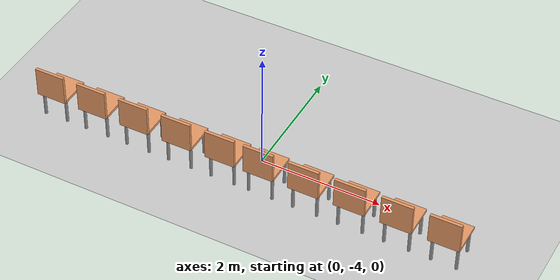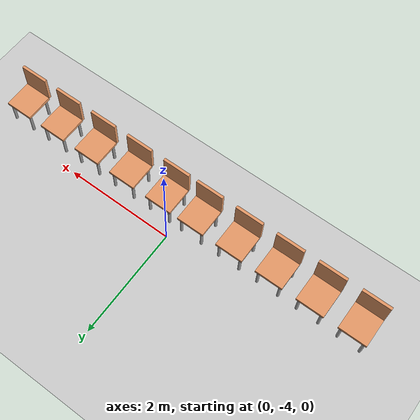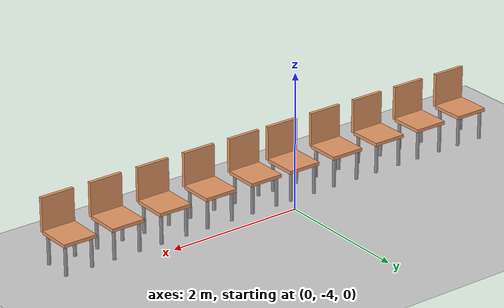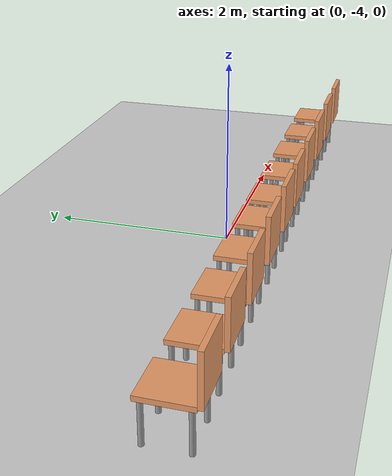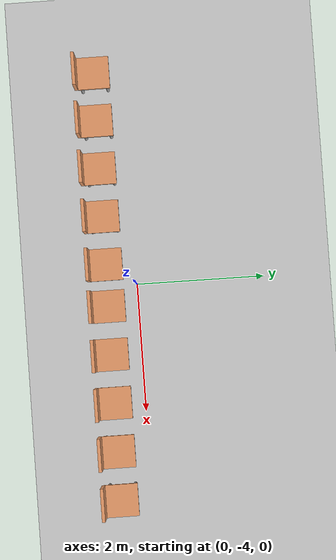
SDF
<sdf version="1.7">
 <world name="default">
  <model name="ground_plane">
   <static>1</static>
   <link name="link">
    <collision name="collision">
     <geometry><plane><normal>0 0 1</normal><size>100 100</size></plane></geometry>
     <surface>
      <contact><collide_bitmask>65535</collide_bitmask></contact>
      <friction><ode><mu>100</mu><mu2>50</mu2></ode></friction>
     </surface>
    </collision>
    <visual name="visual">
     <cast_shadows>0</cast_shadows>
     <geometry><plane><normal>0 0 1</normal><size>100 100</size></plane></geometry>
     <material>
      <script><uri>file://media/materials/scripts/gazebo.material</uri><name>Gazebo/Grey</name></script>
     </material>
    </visual>
   </link>
  </model>
  <model name="chairs_10">
   <model name="chair_1">
    <static>1</static>
    <link name="chair_base">
     <visual name="seat_visual">
      <geometry><box><size>0.5 0.5 0.05</size></box></geometry>
      <pose>0 0 0.45 0 -0 0</pose>
      <material><ambient>0.8 0.5 0.3 1</ambient><diffuse>0.9 0.6 0.4 1</diffuse></material>
     </visual>
     <collision name="seat_collision">
      <geometry><box><size>0.5 0.5 0.05</size></box></geometry>
      <pose>0 0 0.45 0 -0 0</pose>
     </collision>
     <visual name="backrest_visual">
      <geometry><box><size>0.5 0.05 0.5</size></box></geometry>
      <pose>0 -0.275 0.7 0 -0 0</pose>
      <material><ambient>0.8 0.5 0.3 1</ambient><diffuse>0.9 0.6 0.4 1</diffuse></material>
     </visual>
     <collision name="backrest_collision">
      <geometry><box><size>0.5 0.05 0.5</size></box></geometry>
      <pose>0 -0.275 0.7 0 -0 0</pose>
     </collision>
     <visual name="leg1_visual">
      <geometry><cylinder><radius>0.025</radius><length>0.45</length></cylinder></geometry>
      <pose>0.2 0.2 0.225 0 -0 0</pose>
      <material><ambient>0.5 0.5 0.5 1</ambient><diffuse>0.6 0.6 0.6 1</diffuse></material>
     </visual>
     <collision name="leg1_collision">
      <geometry><cylinder><radius>0.025</radius><length>0.45</length></cylinder></geometry>
      <pose>0.2 0.2 0.225 0 -0 0</pose>
     </collision>
     <visual name="leg2_visual">
      <geometry><cylinder><radius>0.025</radius><length>0.45</length></cylinder></geometry>
      <pose>0.2 -0.2 0.225 0 -0 0</pose>
      <material><ambient>0.5 0.5 0.5 1</ambient><diffuse>0.6 0.6 0.6 1</diffuse></material>
     </visual>
     <collision name="leg2_collision">
      <geometry><cylinder><radius>0.025</radius><length>0.45</length></cylinder></geometry>
      <pose>0.2 -0.2 0.225 0 -0 0</pose>
     </collision>
     <visual name="leg3_visual">
      <geometry><cylinder><radius>0.025</radius><length>0.45</length></cylinder></geometry>
      <pose>-0.2 0.2 0.225 0 -0 0</pose>
      <material><ambient>0.5 0.5 0.5 1</ambient><diffuse>0.6 0.6 0.6 1</diffuse></material>
     </visual>
     <collision name="leg3_collision">
      <geometry><cylinder><radius>0.025</radius><length>0.45</length></cylinder></geometry>
      <pose>-0.2 0.2 0.225 0 -0 0</pose>
     </collision>
     <visual name="leg4_visual">
      <geometry><cylinder><radius>0.025</radius><length>0.45</length></cylinder></geometry>
      <pose>-0.2 -0.2 0.225 0 -0 0</pose>
      <material><ambient>0.5 0.5 0.5 1</ambient><diffuse>0.6 0.6 0.6 1</diffuse></material>
     </visual>
     <collision name="leg4_collision">
      <geometry><cylinder><radius>0.025</radius><length>0.45</length></cylinder></geometry>
      <pose>-0.2 -0.2 0.225 0 -0 0</pose>
     </collision>
    </link>
    <pose>0.325 0 0 0 -0 0</pose>
   </model>
   <model name="chair_2">
    <static>1</static>
    <link name="chair_base">
     <visual name="seat_visual">
      <geometry><box><size>0.5 0.5 0.05</size></box></geometry>
      <pose>0 0 0.45 0 -0 0</pose>
      <material><ambient>0.8 0.5 0.3 1</ambient><diffuse>0.9 0.6 0.4 1</diffuse></material>
     </visual>
     <collision name="seat_collision">
      <geometry><box><size>0.5 0.5 0.05</size></box></geometry>
      <pose>0 0 0.45 0 -0 0</pose>
     </collision>
     <visual name="backrest_visual">
      <geometry><box><size>0.5 0.05 0.5</size></box></geometry>
      <pose>0 -0.275 0.7 0 -0 0</pose>
      <material><ambient>0.8 0.5 0.3 1</ambient><diffuse>0.9 0.6 0.4 1</diffuse></material>
     </visual>
     <collision name="backrest_collision">
      <geometry><box><size>0.5 0.05 0.5</size></box></geometry>
      <pose>0 -0.275 0.7 0 -0 0</pose>
     </collision>
     <visual name="leg1_visual">
      <geometry><cylinder><radius>0.025</radius><length>0.45</length></cylinder></geometry>
      <pose>0.2 0.2 0.225 0 -0 0</pose>
      <material><ambient>0.5 0.5 0.5 1</ambient><diffuse>0.6 0.6 0.6 1</diffuse></material>
     </visual>
     <collision name="leg1_collision">
      <geometry><cylinder><radius>0.025</radius><length>0.45</length></cylinder></geometry>
      <pose>0.2 0.2 0.225 0 -0 0</pose>
     </collision>
     <visual name="leg2_visual">
      <geometry><cylinder><radius>0.025</radius><length>0.45</length></cylinder></geometry>
      <pose>0.2 -0.2 0.225 0 -0 0</pose>
      <material><ambient>0.5 0.5 0.5 1</ambient><diffuse>0.6 0.6 0.6 1</diffuse></material>
     </visual>
     <collision name="leg2_collision">
      <geometry><cylinder><radius>0.025</radius><length>0.45</length></cylinder></geometry>
      <pose>0.2 -0.2 0.225 0 -0 0</pose>
     </collision>
     <visual name="leg3_visual">
      <geometry><cylinder><radius>0.025</radius><length>0.45</length></cylinder></geometry>
      <pose>-0.2 0.2 0.225 0 -0 0</pose>
      <material><ambient>0.5 0.5 0.5 1</ambient><diffuse>0.6 0.6 0.6 1</diffuse></material>
     </visual>
     <collision name="leg3_collision">
      <geometry><cylinder><radius>0.025</radius><length>0.45</length></cylinder></geometry>
      <pose>-0.2 0.2 0.225 0 -0 0</pose>
     </collision>
     <visual name="leg4_visual">
      <geometry><cylinder><radius>0.025</radius><length>0.45</length></cylinder></geometry>
      <pose>-0.2 -0.2 0.225 0 -0 0</pose>
      <material><ambient>0.5 0.5 0.5 1</ambient><diffuse>0.6 0.6 0.6 1</diffuse></material>
     </visual>
     <collision name="leg4_collision">
      <geometry><cylinder><radius>0.025</radius><length>0.45</length></cylinder></geometry>
      <pose>-0.2 -0.2 0.225 0 -0 0</pose>
     </collision>
    </link>
    <pose>1.075 0 0 0 -0 0</pose>
   </model>
   <model name="chair_3">
    <static>1</static>
    <link name="chair_base">
     <visual name="seat_visual">
      <geometry><box><size>0.5 0.5 0.05</size></box></geometry>
      <pose>0 0 0.45 0 -0 0</pose>
      <material><ambient>0.8 0.5 0.3 1</ambient><diffuse>0.9 0.6 0.4 1</diffuse></material>
     </visual>
     <collision name="seat_collision">
      <geometry><box><size>0.5 0.5 0.05</size></box></geometry>
      <pose>0 0 0.45 0 -0 0</pose>
     </collision>
     <visual name="backrest_visual">
      <geometry><box><size>0.5 0.05 0.5</size></box></geometry>
      <pose>0 -0.275 0.7 0 -0 0</pose>
      <material><ambient>0.8 0.5 0.3 1</ambient><diffuse>0.9 0.6 0.4 1</diffuse></material>
     </visual>
     <collision name="backrest_collision">
      <geometry><box><size>0.5 0.05 0.5</size></box></geometry>
      <pose>0 -0.275 0.7 0 -0 0</pose>
     </collision>
     <visual name="leg1_visual">
      <geometry><cylinder><radius>0.025</radius><length>0.45</length></cylinder></geometry>
      <pose>0.2 0.2 0.225 0 -0 0</pose>
      <material><ambient>0.5 0.5 0.5 1</ambient><diffuse>0.6 0.6 0.6 1</diffuse></material>
     </visual>
     <collision name="leg1_collision">
      <geometry><cylinder><radius>0.025</radius><length>0.45</length></cylinder></geometry>
      <pose>0.2 0.2 0.225 0 -0 0</pose>
     </collision>
     <visual name="leg2_visual">
      <geometry><cylinder><radius>0.025</radius><length>0.45</length></cylinder></geometry>
      <pose>0.2 -0.2 0.225 0 -0 0</pose>
      <material><ambient>0.5 0.5 0.5 1</ambient><diffuse>0.6 0.6 0.6 1</diffuse></material>
     </visual>
     <collision name="leg2_collision">
      <geometry><cylinder><radius>0.025</radius><length>0.45</length></cylinder></geometry>
      <pose>0.2 -0.2 0.225 0 -0 0</pose>
     </collision>
     <visual name="leg3_visual">
      <geometry><cylinder><radius>0.025</radius><length>0.45</length></cylinder></geometry>
      <pose>-0.2 0.2 0.225 0 -0 0</pose>
      <material><ambient>0.5 0.5 0.5 1</ambient><diffuse>0.6 0.6 0.6 1</diffuse></material>
     </visual>
     <collision name="leg3_collision">
      <geometry><cylinder><radius>0.025</radius><length>0.45</length></cylinder></geometry>
      <pose>-0.2 0.2 0.225 0 -0 0</pose>
     </collision>
     <visual name="leg4_visual">
      <geometry><cylinder><radius>0.025</radius><length>0.45</length></cylinder></geometry>
      <pose>-0.2 -0.2 0.225 0 -0 0</pose>
      <material><ambient>0.5 0.5 0.5 1</ambient><diffuse>0.6 0.6 0.6 1</diffuse></material>
     </visual>
     <collision name="leg4_collision">
      <geometry><cylinder><radius>0.025</radius><length>0.45</length></cylinder></geometry>
      <pose>-0.2 -0.2 0.225 0 -0 0</pose>
     </collision>
    </link>
    <pose>1.825 0 0 0 -0 0</pose>
   </model>
   <model name="chair_4">
    <static>1</static>
    <link name="chair_base">
     <visual name="seat_visual">
      <geometry><box><size>0.5 0.5 0.05</size></box></geometry>
      <pose>0 0 0.45 0 -0 0</pose>
      <material><ambient>0.8 0.5 0.3 1</ambient><diffuse>0.9 0.6 0.4 1</diffuse></material>
     </visual>
     <collision name="seat_collision">
      <geometry><box><size>0.5 0.5 0.05</size></box></geometry>
      <pose>0 0 0.45 0 -0 0</pose>
     </collision>
     <visual name="backrest_visual">
      <geometry><box><size>0.5 0.05 0.5</size></box></geometry>
      <pose>0 -0.275 0.7 0 -0 0</pose>
      <material><ambient>0.8 0.5 0.3 1</ambient><diffuse>0.9 0.6 0.4 1</diffuse></material>
     </visual>
     <collision name="backrest_collision">
      <geometry><box><size>0.5 0.05 0.5</size></box></geometry>
      <pose>0 -0.275 0.7 0 -0 0</pose>
     </collision>
     <visual name="leg1_visual">
      <geometry><cylinder><radius>0.025</radius><length>0.45</length></cylinder></geometry>
      <pose>0.2 0.2 0.225 0 -0 0</pose>
      <material><ambient>0.5 0.5 0.5 1</ambient><diffuse>0.6 0.6 0.6 1</diffuse></material>
     </visual>
     <collision name="leg1_collision">
      <geometry><cylinder><radius>0.025</radius><length>0.45</length></cylinder></geometry>
      <pose>0.2 0.2 0.225 0 -0 0</pose>
     </collision>
     <visual name="leg2_visual">
      <geometry><cylinder><radius>0.025</radius><length>0.45</length></cylinder></geometry>
      <pose>0.2 -0.2 0.225 0 -0 0</pose>
      <material><ambient>0.5 0.5 0.5 1</ambient><diffuse>0.6 0.6 0.6 1</diffuse></material>
     </visual>
     <collision name="leg2_collision">
      <geometry><cylinder><radius>0.025</radius><length>0.45</length></cylinder></geometry>
      <pose>0.2 -0.2 0.225 0 -0 0</pose>
     </collision>
     <visual name="leg3_visual">
      <geometry><cylinder><radius>0.025</radius><length>0.45</length></cylinder></geometry>
      <pose>-0.2 0.2 0.225 0 -0 0</pose>
      <material><ambient>0.5 0.5 0.5 1</ambient><diffuse>0.6 0.6 0.6 1</diffuse></material>
     </visual>
     <collision name="leg3_collision">
      <geometry><cylinder><radius>0.025</radius><length>0.45</length></cylinder></geometry>
      <pose>-0.2 0.2 0.225 0 -0 0</pose>
     </collision>
     <visual name="leg4_visual">
      <geometry><cylinder><radius>0.025</radius><length>0.45</length></cylinder></geometry>
      <pose>-0.2 -0.2 0.225 0 -0 0</pose>
      <material><ambient>0.5 0.5 0.5 1</ambient><diffuse>0.6 0.6 0.6 1</diffuse></material>
     </visual>
     <collision name="leg4_collision">
      <geometry><cylinder><radius>0.025</radius><length>0.45</length></cylinder></geometry>
      <pose>-0.2 -0.2 0.225 0 -0 0</pose>
     </collision>
    </link>
    <pose>2.575 0 0 0 -0 0</pose>
   </model>
   <model name="chair_5">
    <static>1</static>
    <link name="chair_base">
     <visual name="seat_visual">
      <geometry><box><size>0.5 0.5 0.05</size></box></geometry>
      <pose>0 0 0.45 0 -0 0</pose>
      <material><ambient>0.8 0.5 0.3 1</ambient><diffuse>0.9 0.6 0.4 1</diffuse></material>
     </visual>
     <collision name="seat_collision">
      <geometry><box><size>0.5 0.5 0.05</size></box></geometry>
      <pose>0 0 0.45 0 -0 0</pose>
     </collision>
     <visual name="backrest_visual">
      <geometry><box><size>0.5 0.05 0.5</size></box></geometry>
      <pose>0 -0.275 0.7 0 -0 0</pose>
      <material><ambient>0.8 0.5 0.3 1</ambient><diffuse>0.9 0.6 0.4 1</diffuse></material>
     </visual>
     <collision name="backrest_collision">
      <geometry><box><size>0.5 0.05 0.5</size></box></geometry>
      <pose>0 -0.275 0.7 0 -0 0</pose>
     </collision>
     <visual name="leg1_visual">
      <geometry><cylinder><radius>0.025</radius><length>0.45</length></cylinder></geometry>
      <pose>0.2 0.2 0.225 0 -0 0</pose>
      <material><ambient>0.5 0.5 0.5 1</ambient><diffuse>0.6 0.6 0.6 1</diffuse></material>
     </visual>
     <collision name="leg1_collision">
      <geometry><cylinder><radius>0.025</radius><length>0.45</length></cylinder></geometry>
      <pose>0.2 0.2 0.225 0 -0 0</pose>
     </collision>
     <visual name="leg2_visual">
      <geometry><cylinder><radius>0.025</radius><length>0.45</length></cylinder></geometry>
      <pose>0.2 -0.2 0.225 0 -0 0</pose>
      <material><ambient>0.5 0.5 0.5 1</ambient><diffuse>0.6 0.6 0.6 1</diffuse></material>
     </visual>
     <collision name="leg2_collision">
      <geometry><cylinder><radius>0.025</radius><length>0.45</length></cylinder></geometry>
      <pose>0.2 -0.2 0.225 0 -0 0</pose>
     </collision>
     <visual name="leg3_visual">
      <geometry><cylinder><radius>0.025</radius><length>0.45</length></cylinder></geometry>
      <pose>-0.2 0.2 0.225 0 -0 0</pose>
      <material><ambient>0.5 0.5 0.5 1</ambient><diffuse>0.6 0.6 0.6 1</diffuse></material>
     </visual>
     <collision name="leg3_collision">
      <geometry><cylinder><radius>0.025</radius><length>0.45</length></cylinder></geometry>
      <pose>-0.2 0.2 0.225 0 -0 0</pose>
     </collision>
     <visual name="leg4_visual">
      <geometry><cylinder><radius>0.025</radius><length>0.45</length></cylinder></geometry>
      <pose>-0.2 -0.2 0.225 0 -0 0</pose>
      <material><ambient>0.5 0.5 0.5 1</ambient><diffuse>0.6 0.6 0.6 1</diffuse></material>
     </visual>
     <collision name="leg4_collision">
      <geometry><cylinder><radius>0.025</radius><length>0.45</length></cylinder></geometry>
      <pose>-0.2 -0.2 0.225 0 -0 0</pose>
     </collision>
    </link>
    <pose>3.325 0 0 0 -0 0</pose>
   </model>
   <model name="chair_6">
    <static>1</static>
    <link name="chair_base">
     <visual name="seat_visual">
      <geometry><box><size>0.5 0.5 0.05</size></box></geometry>
      <pose>0 0 0.45 0 -0 0</pose>
      <material><ambient>0.8 0.5 0.3 1</ambient><diffuse>0.9 0.6 0.4 1</diffuse></material>
     </visual>
     <collision name="seat_collision">
      <geometry><box><size>0.5 0.5 0.05</size></box></geometry>
      <pose>0 0 0.45 0 -0 0</pose>
     </collision>
     <visual name="backrest_visual">
      <geometry><box><size>0.5 0.05 0.5</size></box></geometry>
      <pose>0 -0.275 0.7 0 -0 0</pose>
      <material><ambient>0.8 0.5 0.3 1</ambient><diffuse>0.9 0.6 0.4 1</diffuse></material>
     </visual>
     <collision name="backrest_collision">
      <geometry><box><size>0.5 0.05 0.5</size></box></geometry>
      <pose>0 -0.275 0.7 0 -0 0</pose>
     </collision>
     <visual name="leg1_visual">
      <geometry><cylinder><radius>0.025</radius><length>0.45</length></cylinder></geometry>
      <pose>0.2 0.2 0.225 0 -0 0</pose>
      <material><ambient>0.5 0.5 0.5 1</ambient><diffuse>0.6 0.6 0.6 1</diffuse></material>
     </visual>
     <collision name="leg1_collision">
      <geometry><cylinder><radius>0.025</radius><length>0.45</length></cylinder></geometry>
      <pose>0.2 0.2 0.225 0 -0 0</pose>
     </collision>
     <visual name="leg2_visual">
      <geometry><cylinder><radius>0.025</radius><length>0.45</length></cylinder></geometry>
      <pose>0.2 -0.2 0.225 0 -0 0</pose>
      <material><ambient>0.5 0.5 0.5 1</ambient><diffuse>0.6 0.6 0.6 1</diffuse></material>
     </visual>
     <collision name="leg2_collision">
      <geometry><cylinder><radius>0.025</radius><length>0.45</length></cylinder></geometry>
      <pose>0.2 -0.2 0.225 0 -0 0</pose>
     </collision>
     <visual name="leg3_visual">
      <geometry><cylinder><radius>0.025</radius><length>0.45</length></cylinder></geometry>
      <pose>-0.2 0.2 0.225 0 -0 0</pose>
      <material><ambient>0.5 0.5 0.5 1</ambient><diffuse>0.6 0.6 0.6 1</diffuse></material>
     </visual>
     <collision name="leg3_collision">
      <geometry><cylinder><radius>0.025</radius><length>0.45</length></cylinder></geometry>
      <pose>-0.2 0.2 0.225 0 -0 0</pose>
     </collision>
     <visual name="leg4_visual">
      <geometry><cylinder><radius>0.025</radius><length>0.45</length></cylinder></geometry>
      <pose>-0.2 -0.2 0.225 0 -0 0</pose>
      <material><ambient>0.5 0.5 0.5 1</ambient><diffuse>0.6 0.6 0.6 1</diffuse></material>
     </visual>
     <collision name="leg4_collision">
      <geometry><cylinder><radius>0.025</radius><length>0.45</length></cylinder></geometry>
      <pose>-0.2 -0.2 0.225 0 -0 0</pose>
     </collision>
    </link>
    <pose>-0.325 0 0 0 -0 0</pose>
   </model>
   <model name="chair_7">
    <static>1</static>
    <link name="chair_base">
     <visual name="seat_visual">
      <geometry><box><size>0.5 0.5 0.05</size></box></geometry>
      <pose>0 0 0.45 0 -0 0</pose>
      <material><ambient>0.8 0.5 0.3 1</ambient><diffuse>0.9 0.6 0.4 1</diffuse></material>
     </visual>
     <collision name="seat_collision">
      <geometry><box><size>0.5 0.5 0.05</size></box></geometry>
      <pose>0 0 0.45 0 -0 0</pose>
     </collision>
     <visual name="backrest_visual">
      <geometry><box><size>0.5 0.05 0.5</size></box></geometry>
      <pose>0 -0.275 0.7 0 -0 0</pose>
      <material><ambient>0.8 0.5 0.3 1</ambient><diffuse>0.9 0.6 0.4 1</diffuse></material>
     </visual>
     <collision name="backrest_collision">
      <geometry><box><size>0.5 0.05 0.5</size></box></geometry>
      <pose>0 -0.275 0.7 0 -0 0</pose>
     </collision>
     <visual name="leg1_visual">
      <geometry><cylinder><radius>0.025</radius><length>0.45</length></cylinder></geometry>
      <pose>0.2 0.2 0.225 0 -0 0</pose>
      <material><ambient>0.5 0.5 0.5 1</ambient><diffuse>0.6 0.6 0.6 1</diffuse></material>
     </visual>
     <collision name="leg1_collision">
      <geometry><cylinder><radius>0.025</radius><length>0.45</length></cylinder></geometry>
      <pose>0.2 0.2 0.225 0 -0 0</pose>
     </collision>
     <visual name="leg2_visual">
      <geometry><cylinder><radius>0.025</radius><length>0.45</length></cylinder></geometry>
      <pose>0.2 -0.2 0.225 0 -0 0</pose>
      <material><ambient>0.5 0.5 0.5 1</ambient><diffuse>0.6 0.6 0.6 1</diffuse></material>
     </visual>
     <collision name="leg2_collision">
      <geometry><cylinder><radius>0.025</radius><length>0.45</length></cylinder></geometry>
      <pose>0.2 -0.2 0.225 0 -0 0</pose>
     </collision>
     <visual name="leg3_visual">
      <geometry><cylinder><radius>0.025</radius><length>0.45</length></cylinder></geometry>
      <pose>-0.2 0.2 0.225 0 -0 0</pose>
      <material><ambient>0.5 0.5 0.5 1</ambient><diffuse>0.6 0.6 0.6 1</diffuse></material>
     </visual>
     <collision name="leg3_collision">
      <geometry><cylinder><radius>0.025</radius><length>0.45</length></cylinder></geometry>
      <pose>-0.2 0.2 0.225 0 -0 0</pose>
     </collision>
     <visual name="leg4_visual">
      <geometry><cylinder><radius>0.025</radius><length>0.45</length></cylinder></geometry>
      <pose>-0.2 -0.2 0.225 0 -0 0</pose>
      <material><ambient>0.5 0.5 0.5 1</ambient><diffuse>0.6 0.6 0.6 1</diffuse></material>
     </visual>
     <collision name="leg4_collision">
      <geometry><cylinder><radius>0.025</radius><length>0.45</length></cylinder></geometry>
      <pose>-0.2 -0.2 0.225 0 -0 0</pose>
     </collision>
    </link>
    <pose>-1.075 0 0 0 -0 0</pose>
   </model>
   <model name="chair_8">
    <static>1</static>
    <link name="chair_base">
     <visual name="seat_visual">
      <geometry><box><size>0.5 0.5 0.05</size></box></geometry>
      <pose>0 0 0.45 0 -0 0</pose>
      <material><ambient>0.8 0.5 0.3 1</ambient><diffuse>0.9 0.6 0.4 1</diffuse></material>
     </visual>
     <collision name="seat_collision">
      <geometry><box><size>0.5 0.5 0.05</size></box></geometry>
      <pose>0 0 0.45 0 -0 0</pose>
     </collision>
     <visual name="backrest_visual">
      <geometry><box><size>0.5 0.05 0.5</size></box></geometry>
      <pose>0 -0.275 0.7 0 -0 0</pose>
      <material><ambient>0.8 0.5 0.3 1</ambient><diffuse>0.9 0.6 0.4 1</diffuse></material>
     </visual>
     <collision name="backrest_collision">
      <geometry><box><size>0.5 0.05 0.5</size></box></geometry>
      <pose>0 -0.275 0.7 0 -0 0</pose>
     </collision>
     <visual name="leg1_visual">
      <geometry><cylinder><radius>0.025</radius><length>0.45</length></cylinder></geometry>
      <pose>0.2 0.2 0.225 0 -0 0</pose>
      <material><ambient>0.5 0.5 0.5 1</ambient><diffuse>0.6 0.6 0.6 1</diffuse></material>
     </visual>
     <collision name="leg1_collision">
      <geometry><cylinder><radius>0.025</radius><length>0.45</length></cylinder></geometry>
      <pose>0.2 0.2 0.225 0 -0 0</pose>
     </collision>
     <visual name="leg2_visual">
      <geometry><cylinder><radius>0.025</radius><length>0.45</length></cylinder></geometry>
      <pose>0.2 -0.2 0.225 0 -0 0</pose>
      <material><ambient>0.5 0.5 0.5 1</ambient><diffuse>0.6 0.6 0.6 1</diffuse></material>
     </visual>
     <collision name="leg2_collision">
      <geometry><cylinder><radius>0.025</radius><length>0.45</length></cylinder></geometry>
      <pose>0.2 -0.2 0.225 0 -0 0</pose>
     </collision>
     <visual name="leg3_visual">
      <geometry><cylinder><radius>0.025</radius><length>0.45</length></cylinder></geometry>
      <pose>-0.2 0.2 0.225 0 -0 0</pose>
      <material><ambient>0.5 0.5 0.5 1</ambient><diffuse>0.6 0.6 0.6 1</diffuse></material>
     </visual>
     <collision name="leg3_collision">
      <geometry><cylinder><radius>0.025</radius><length>0.45</length></cylinder></geometry>
      <pose>-0.2 0.2 0.225 0 -0 0</pose>
     </collision>
     <visual name="leg4_visual">
      <geometry><cylinder><radius>0.025</radius><length>0.45</length></cylinder></geometry>
      <pose>-0.2 -0.2 0.225 0 -0 0</pose>
      <material><ambient>0.5 0.5 0.5 1</ambient><diffuse>0.6 0.6 0.6 1</diffuse></material>
     </visual>
     <collision name="leg4_collision">
      <geometry><cylinder><radius>0.025</radius><length>0.45</length></cylinder></geometry>
      <pose>-0.2 -0.2 0.225 0 -0 0</pose>
     </collision>
    </link>
    <pose>-1.825 0 0 0 -0 0</pose>
   </model>
   <model name="chair_9">
    <static>1</static>
    <link name="chair_base">
     <visual name="seat_visual">
      <geometry><box><size>0.5 0.5 0.05</size></box></geometry>
      <pose>0 0 0.45 0 -0 0</pose>
      <material><ambient>0.8 0.5 0.3 1</ambient><diffuse>0.9 0.6 0.4 1</diffuse></material>
     </visual>
     <collision name="seat_collision">
      <geometry><box><size>0.5 0.5 0.05</size></box></geometry>
      <pose>0 0 0.45 0 -0 0</pose>
     </collision>
     <visual name="backrest_visual">
      <geometry><box><size>0.5 0.05 0.5</size></box></geometry>
      <pose>0 -0.275 0.7 0 -0 0</pose>
      <material><ambient>0.8 0.5 0.3 1</ambient><diffuse>0.9 0.6 0.4 1</diffuse></material>
     </visual>
     <collision name="backrest_collision">
      <geometry><box><size>0.5 0.05 0.5</size></box></geometry>
      <pose>0 -0.275 0.7 0 -0 0</pose>
     </collision>
     <visual name="leg1_visual">
      <geometry><cylinder><radius>0.025</radius><length>0.45</length></cylinder></geometry>
      <pose>0.2 0.2 0.225 0 -0 0</pose>
      <material><ambient>0.5 0.5 0.5 1</ambient><diffuse>0.6 0.6 0.6 1</diffuse></material>
     </visual>
     <collision name="leg1_collision">
      <geometry><cylinder><radius>0.025</radius><length>0.45</length></cylinder></geometry>
      <pose>0.2 0.2 0.225 0 -0 0</pose>
     </collision>
     <visual name="leg2_visual">
      <geometry><cylinder><radius>0.025</radius><length>0.45</length></cylinder></geometry>
      <pose>0.2 -0.2 0.225 0 -0 0</pose>
      <material><ambient>0.5 0.5 0.5 1</ambient><diffuse>0.6 0.6 0.6 1</diffuse></material>
     </visual>
     <collision name="leg2_collision">
      <geometry><cylinder><radius>0.025</radius><length>0.45</length></cylinder></geometry>
      <pose>0.2 -0.2 0.225 0 -0 0</pose>
     </collision>
     <visual name="leg3_visual">
      <geometry><cylinder><radius>0.025</radius><length>0.45</length></cylinder></geometry>
      <pose>-0.2 0.2 0.225 0 -0 0</pose>
      <material><ambient>0.5 0.5 0.5 1</ambient><diffuse>0.6 0.6 0.6 1</diffuse></material>
     </visual>
     <collision name="leg3_collision">
      <geometry><cylinder><radius>0.025</radius><length>0.45</length></cylinder></geometry>
      <pose>-0.2 0.2 0.225 0 -0 0</pose>
     </collision>
     <visual name="leg4_visual">
      <geometry><cylinder><radius>0.025</radius><length>0.45</length></cylinder></geometry>
      <pose>-0.2 -0.2 0.225 0 -0 0</pose>
      <material><ambient>0.5 0.5 0.5 1</ambient><diffuse>0.6 0.6 0.6 1</diffuse></material>
     </visual>
     <collision name="leg4_collision">
      <geometry><cylinder><radius>0.025</radius><length>0.45</length></cylinder></geometry>
      <pose>-0.2 -0.2 0.225 0 -0 0</pose>
     </collision>
    </link>
    <pose>-2.575 0 0 0 -0 0</pose>
   </model>
   <model name="chair_10">
    <static>1</static>
    <link name="chair_base">
     <visual name="seat_visual">
      <geometry><box><size>0.5 0.5 0.05</size></box></geometry>
      <pose>0 0 0.45 0 -0 0</pose>
      <material><ambient>0.8 0.5 0.3 1</ambient><diffuse>0.9 0.6 0.4 1</diffuse></material>
     </visual>
     <collision name="seat_collision">
      <geometry><box><size>0.5 0.5 0.05</size></box></geometry>
      <pose>0 0 0.45 0 -0 0</pose>
     </collision>
     <visual name="backrest_visual">
      <geometry><box><size>0.5 0.05 0.5</size></box></geometry>
      <pose>0 -0.275 0.7 0 -0 0</pose>
      <material><ambient>0.8 0.5 0.3 1</ambient><diffuse>0.9 0.6 0.4 1</diffuse></material>
     </visual>
     <collision name="backrest_collision">
      <geometry><box><size>0.5 0.05 0.5</size></box></geometry>
      <pose>0 -0.275 0.7 0 -0 0</pose>
     </collision>
     <visual name="leg1_visual">
      <geometry><cylinder><radius>0.025</radius><length>0.45</length></cylinder></geometry>
      <pose>0.2 0.2 0.225 0 -0 0</pose>
      <material><ambient>0.5 0.5 0.5 1</ambient><diffuse>0.6 0.6 0.6 1</diffuse></material>
     </visual>
     <collision name="leg1_collision">
      <geometry><cylinder><radius>0.025</radius><length>0.45</length></cylinder></geometry>
      <pose>0.2 0.2 0.225 0 -0 0</pose>
     </collision>
     <visual name="leg2_visual">
      <geometry><cylinder><radius>0.025</radius><length>0.45</length></cylinder></geometry>
      <pose>0.2 -0.2 0.225 0 -0 0</pose>
      <material><ambient>0.5 0.5 0.5 1</ambient><diffuse>0.6 0.6 0.6 1</diffuse></material>
     </visual>
     <collision name="leg2_collision">
      <geometry><cylinder><radius>0.025</radius><length>0.45</length></cylinder></geometry>
      <pose>0.2 -0.2 0.225 0 -0 0</pose>
     </collision>
     <visual name="leg3_visual">
      <geometry><cylinder><radius>0.025</radius><length>0.45</length></cylinder></geometry>
      <pose>-0.2 0.2 0.225 0 -0 0</pose>
      <material><ambient>0.5 0.5 0.5 1</ambient><diffuse>0.6 0.6 0.6 1</diffuse></material>
     </visual>
     <collision name="leg3_collision">
      <geometry><cylinder><radius>0.025</radius><length>0.45</length></cylinder></geometry>
      <pose>-0.2 0.2 0.225 0 -0 0</pose>
     </collision>
     <visual name="leg4_visual">
      <geometry><cylinder><radius>0.025</radius><length>0.45</length></cylinder></geometry>
      <pose>-0.2 -0.2 0.225 0 -0 0</pose>
      <material><ambient>0.5 0.5 0.5 1</ambient><diffuse>0.6 0.6 0.6 1</diffuse></material>
     </visual>
     <collision name="leg4_collision">
      <geometry><cylinder><radius>0.025</radius><length>0.45</length></cylinder></geometry>
      <pose>-0.2 -0.2 0.225 0 -0 0</pose>
     </collision>
    </link>
    <pose>-3.325 0 0 0 -0 0</pose>
   </model>
   <static>0</static>
   <pose>0 -4.45 0 0 -0 0</pose>
  </model>
 </world>
</sdf>
